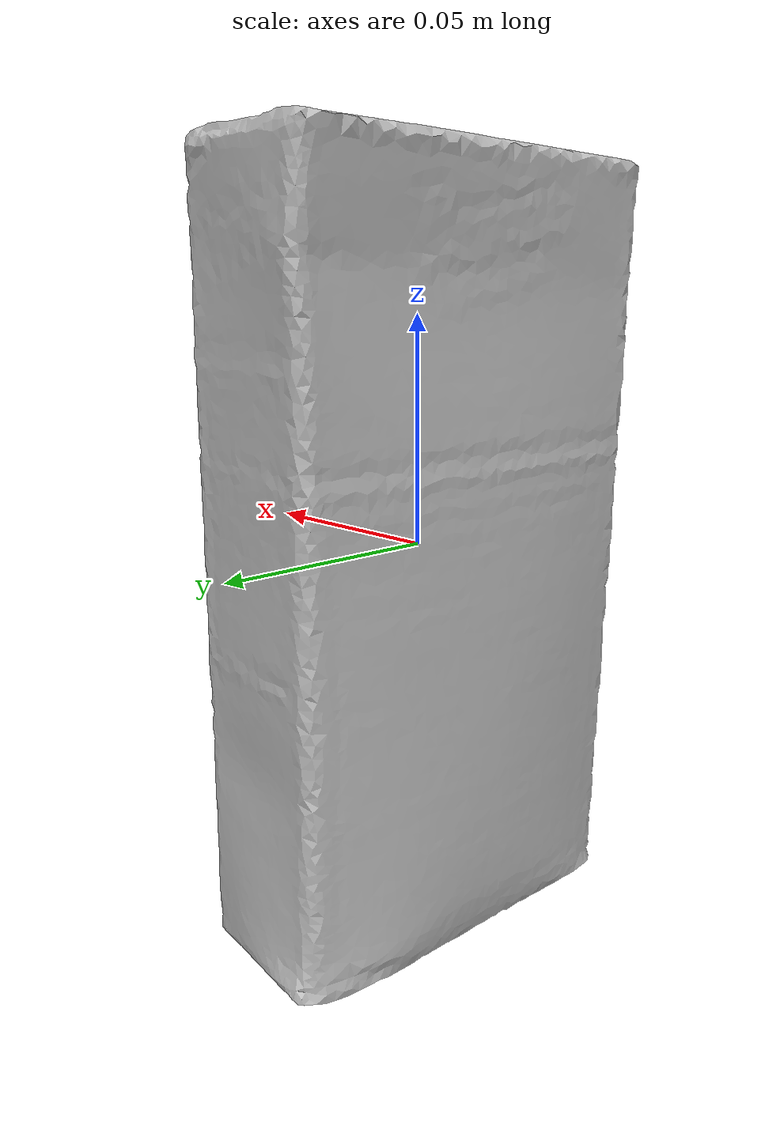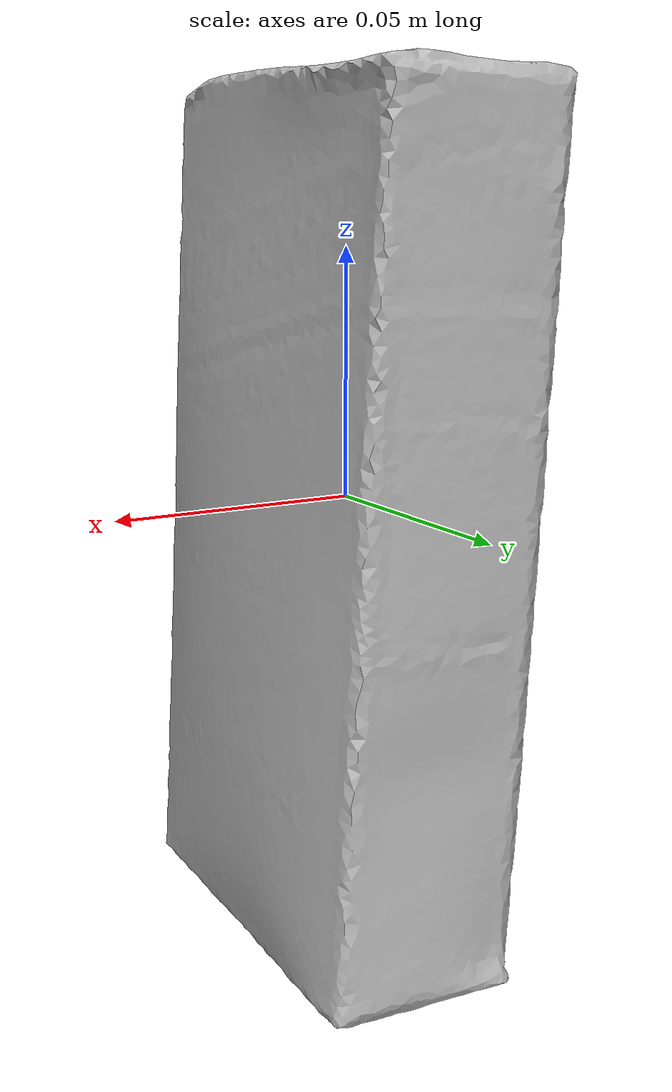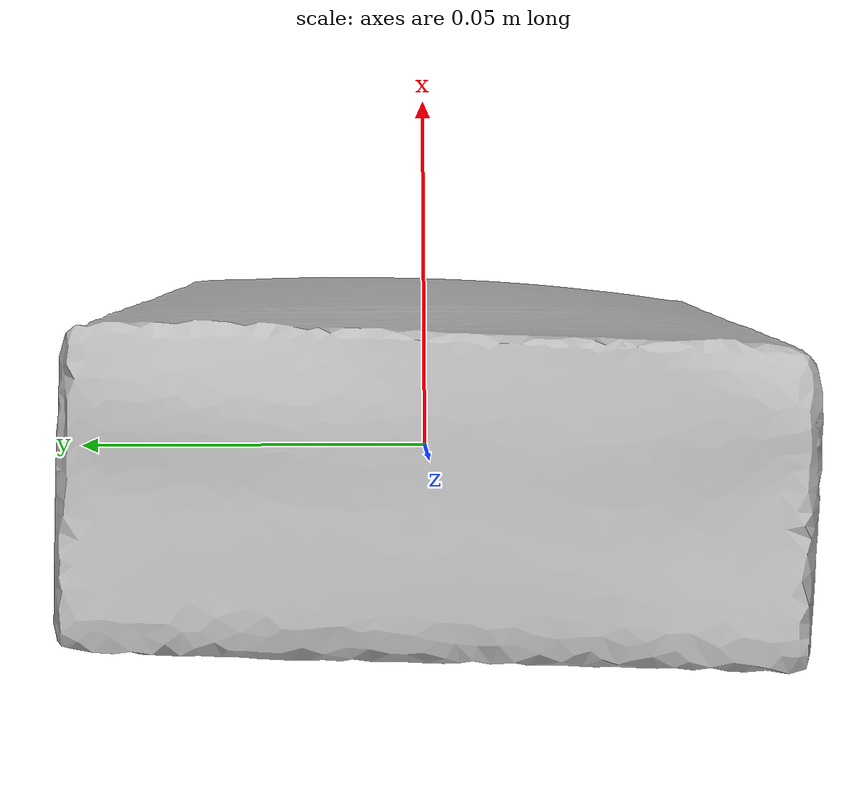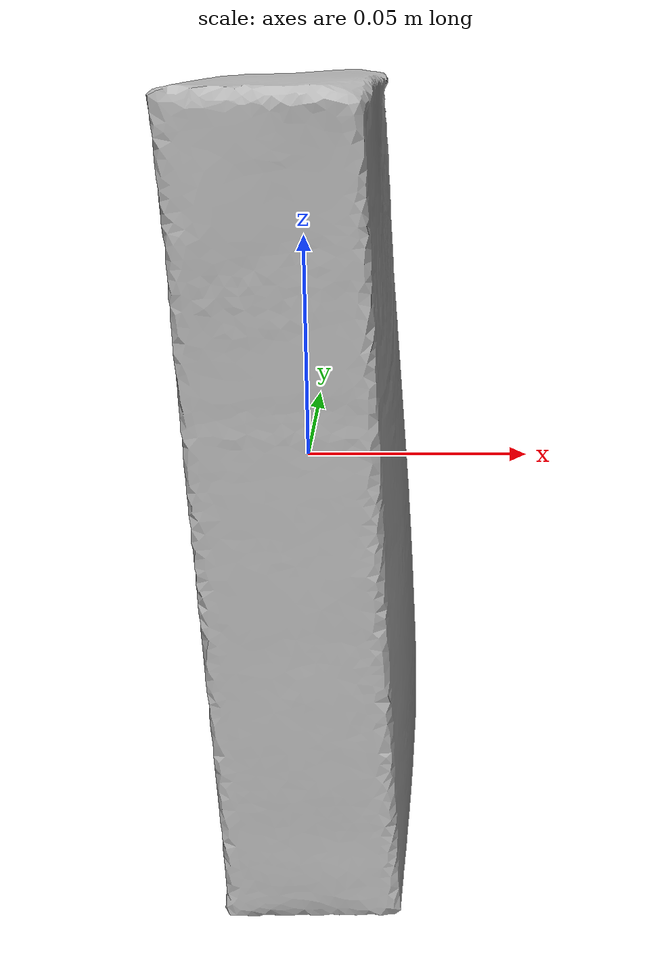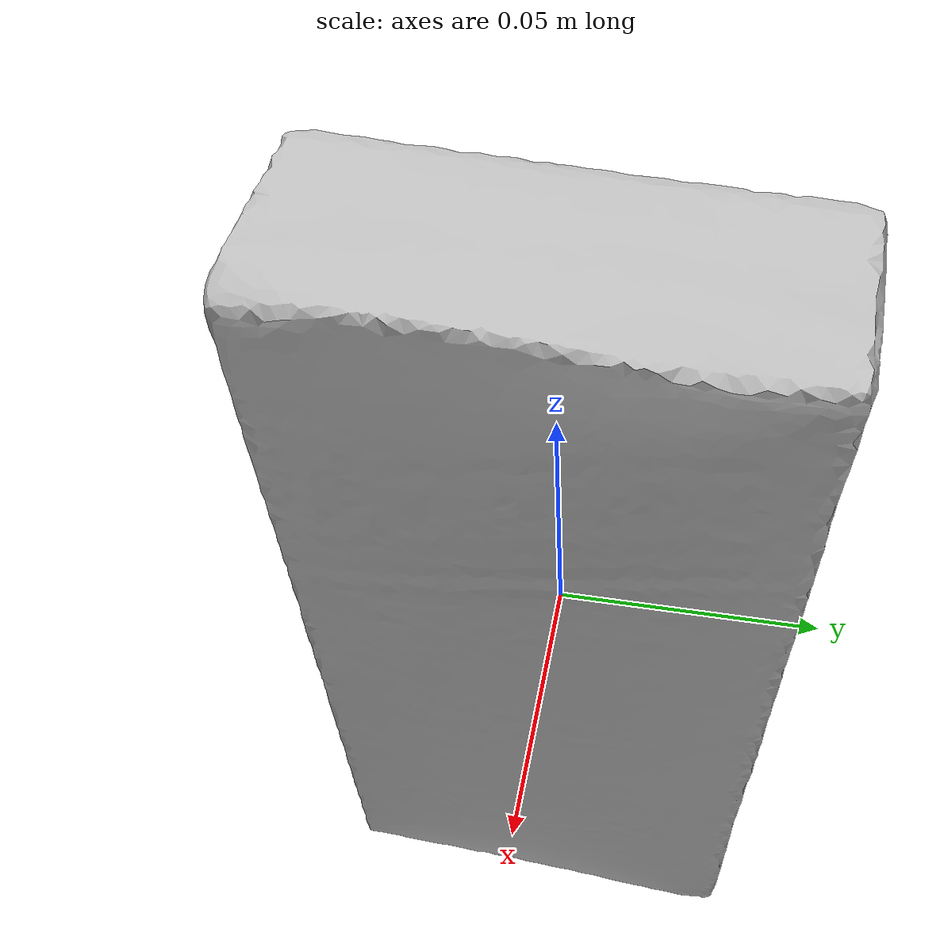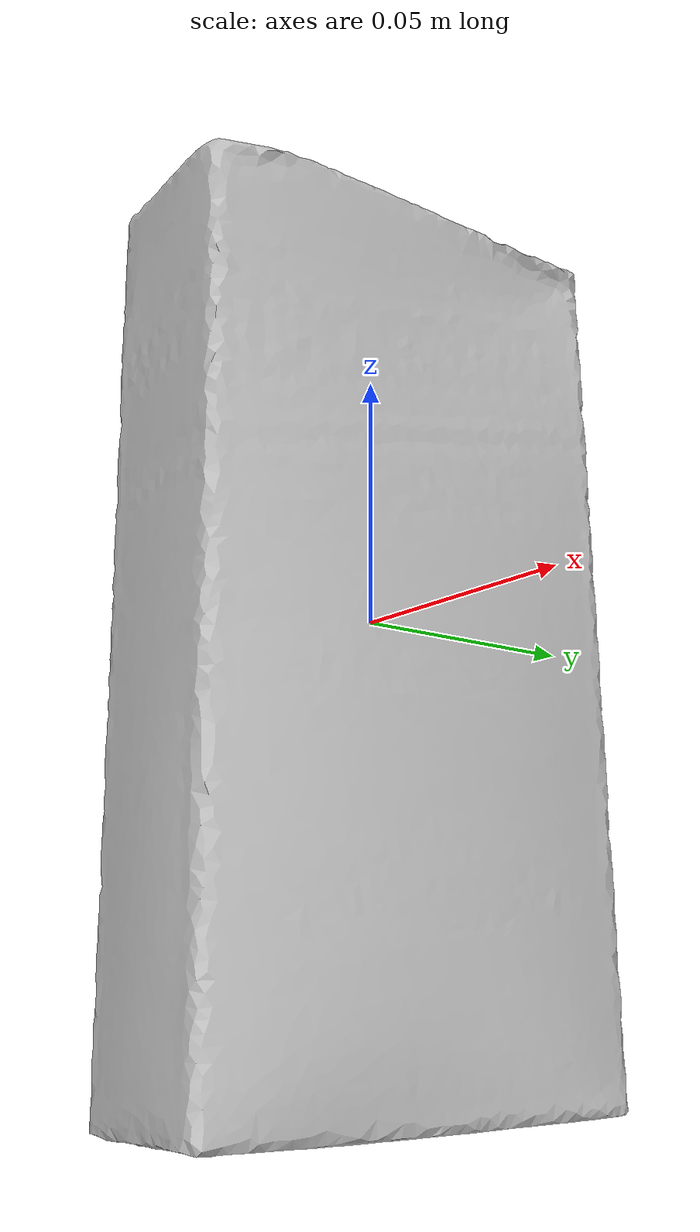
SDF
<?xml version='1.0'?>
<sdf version="1.4">
  <model name="sugar_box">
    <static>false</static>
    <link name="link">
      <inertial>
        <pose>0 0 0 -3.126326294796978 0.04012657164807777 3.103110966594215</pose>
        <mass>0.000637932730363638</mass>
        <inertia>
          <ixx>2.0142733073790597e-06</ixx>
          <ixy>1.5302841332231012e-23</ixy>
          <ixz>2.3161057151484775e-23</ixz>
          <iyy>1.6869117109553208e-06</iyy>
          <iyz>6.832511859688009e-22</iyz>
          <izz>5.036834967526002e-07</izz>
        </inertia>
      </inertial>
      <collision name="collision">
        <geometry>
          <mesh>
            <!-- Use a downsampled mesh for collisions -->
            <uri>model://004_sugar_box/google_16k/textured_simple.obj</uri>
	        </mesh>
        </geometry>
        <surface>
      </surface>
      </collision>
      <visual name="visual">
        <geometry>
          <mesh>
            <uri>model://004_sugar_box/google_16k/textured_simple.obj</uri>
	        </mesh>
        </geometry>
      </visual>
    </link>
  </model>
</sdf>
